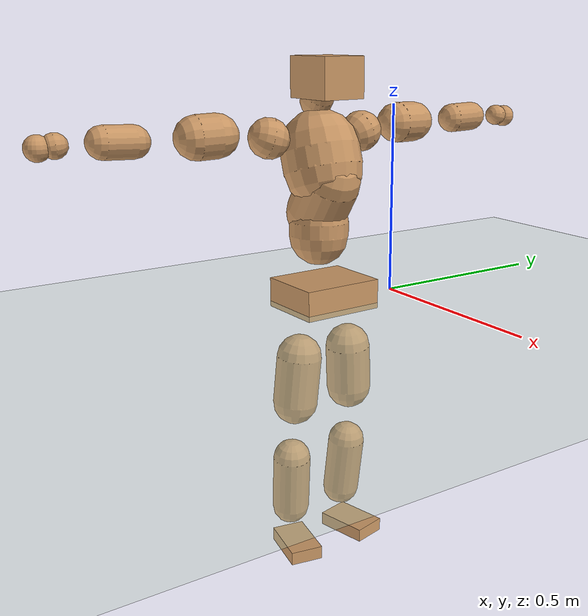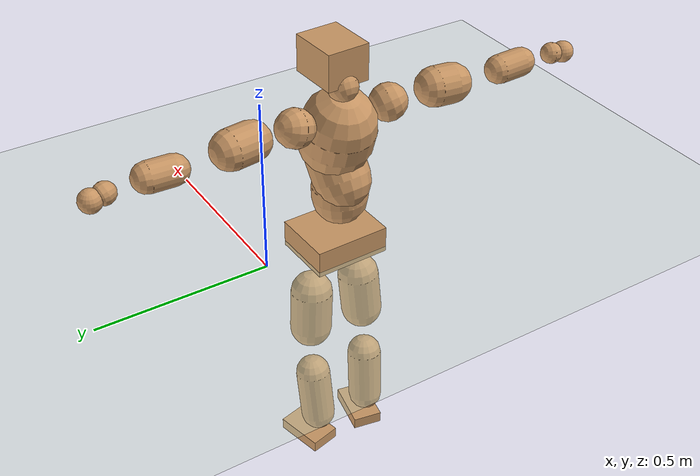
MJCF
<mujoco model="humanoid">
  <compiler coordinate="local" angle="radian"/>
  <default>
    <joint damping="0.0" armature="0.01" stiffness="0.0" limited="true"/>
    <geom conaffinity="1" condim="3" contype="7" margin="0.001" rgba="0.8 0.6 .4 1"/>
  </default>
  <asset>
    <texture type="skybox" builtin="gradient" rgb1=".4 .5 .6" rgb2="0 0 0" width="100" height="100"/>
    <texture builtin="flat" height="1278" mark="cross" markrgb="1 1 1" name="texgeom" random="0.01" rgb1="0.8 0.6 0.4" rgb2="0.8 0.6 0.4" type="cube" width="127"/>
    <texture builtin="checker" height="100" name="texplane" rgb1="0 0 0" rgb2="0.8 0.8 0.8" type="2d" width="100"/>
    <material name="MatPlane" reflectance="0.5" shininess="1" specular="1" texrepeat="60 60" texture="texplane"/>
    <material name="geom" texture="texgeom" texuniform="true"/>
  </asset>
  <worldbody>
    <light cutoff="100" diffuse="1 1 1" dir="-0 0 -1.3" directional="true" exponent="1" pos="0 0 1.3" specular=".1 .1 .1"/>
    <geom conaffinity="1" condim="3" name="floor" pos="0 0 0" rgba="0.8 0.9 0.8 1" size="100 100 .2" type="plane" material="MatPlane"/>
    <body name="Pelvis" pos="-0.0019 -0.2142 0.0348">
      <freejoint name="Pelvis"/>
      <geom type="box" contype="1" conaffinity="1" density="5359.375183" pos="-0.0047 -0.0001 -0.0121" size="0.0896 0.1096 0.039" quat="0.9999 0.0000 0.0000 0.0138" name="Pelvis"/>
      <body name="L_Hip" pos="-0.0022 0.0732 -0.0848">
        <joint name="L_Hip_x" type="hinge" pos="0 0 0" axis="1 0 0" stiffness="1600" damping="160" armature="0.02" range="-180.0000 180.0000"/>
        <joint name="L_Hip_y" type="hinge" pos="0 0 0" axis="0 1 0" stiffness="1600" damping="160" armature="0.02" range="-180.0000 180.0000"/>
        <joint name="L_Hip_z" type="hinge" pos="0 0 0" axis="0 0 1" stiffness="1600" damping="160" armature="0.02" range="-180.0000 180.0000"/>
        <geom type="capsule" contype="1" conaffinity="1" density="2040.816327" size="0.0601" fromto="-0.0040 0.0056 -0.0898 -0.0095 0.0133 -0.2121" name="L_Hip"/>
        <body name="L_Knee" pos="-0.0135 0.0189 -0.3019">
          <joint name="L_Knee_x" type="hinge" pos="0 0 0" axis="1 0 0" stiffness="1600" damping="160" armature="0.02" range="-180.0000 180.0000"/>
          <joint name="L_Knee_y" type="hinge" pos="0 0 0" axis="0 1 0" stiffness="1600" damping="160" armature="0.02" range="-180.0000 180.0000"/>
          <joint name="L_Knee_z" type="hinge" pos="0 0 0" axis="0 0 1" stiffness="1600" damping="160" armature="0.02" range="-180.0000 180.0000"/>
          <geom type="capsule" contype="1" conaffinity="1" density="1234.567901" size="0.0504" fromto="-0.0101 -0.0024 -0.0797 -0.0299 -0.0071 -0.2354" name="L_Knee"/>
          <body name="L_Ankle" pos="-0.04 -0.0095 -0.3151">
            <joint name="L_Ankle_x" type="hinge" pos="0 0 0" axis="1 0 0" stiffness="1600" damping="160" armature="0.02" range="-180.0000 180.0000"/>
            <joint name="L_Ankle_y" type="hinge" pos="0 0 0" axis="0 1 0" stiffness="1600" damping="160" armature="0.02" range="-180.0000 180.0000"/>
            <joint name="L_Ankle_z" type="hinge" pos="0 0 0" axis="0 0 1" stiffness="1600" damping="160" armature="0.02" range="-180.0000 180.0000"/>
            <geom type="box" contype="1" conaffinity="1" density="999.999991" pos="0.0502 0.0118 -0.0234" size="0.0727 0.0451 0.018" quat="0.9933 0.0000 0.0000 0.1152" name="L_Ankle"/>
            <body name="L_Toe" pos="0.1004 0.0236 -0.0467">
              <joint name="L_Toe_x" type="hinge" pos="0 0 0" axis="1 0 0" stiffness="1000" damping="100" armature="0.02" range="-180.0000 180.0000"/>
              <joint name="L_Toe_y" type="hinge" pos="0 0 0" axis="0 1 0" stiffness="1000" damping="100" armature="0.02" range="-180.0000 180.0000"/>
              <joint name="L_Toe_z" type="hinge" pos="0 0 0" axis="0 0 1" stiffness="1000" damping="100" armature="0.02" range="-180.0000 180.0000"/>
              <geom type="box" contype="1" conaffinity="1" density="7486095.180448" pos="0.0000 0.0000 0.0232" size="0.001 0.0023 0.0009" quat="0.9925 0.0000 0.0000 0.1222" name="L_Toe"/>
            </body>
          </body>
        </body>
      </body>
      <body name="R_Hip" pos="0.0001 -0.0718 -0.0854">
        <joint name="R_Hip_x" type="hinge" pos="0 0 0" axis="1 0 0" stiffness="1600" damping="160" armature="0.02" range="-180.0000 180.0000"/>
        <joint name="R_Hip_y" type="hinge" pos="0 0 0" axis="0 1 0" stiffness="1600" damping="160" armature="0.02" range="-180.0000 180.0000"/>
        <joint name="R_Hip_z" type="hinge" pos="0 0 0" axis="0 0 1" stiffness="1600" damping="160" armature="0.02" range="-180.0000 180.0000"/>
        <geom type="capsule" contype="1" conaffinity="1" density="2040.816327" size="0.0596" fromto="-0.0043 -0.0072 -0.0892 -0.0106 -0.0175 -0.2186" name="R_Hip"/>
        <body name="R_Knee" pos="-0.015 -0.0247 -0.3078">
          <joint name="R_Knee_x" type="hinge" pos="0 0 0" axis="1 0 0" stiffness="1600" damping="160" armature="0.02" range="-180.0000 180.0000"/>
          <joint name="R_Knee_y" type="hinge" pos="0 0 0" axis="0 1 0" stiffness="1600" damping="160" armature="0.02" range="-180.0000 180.0000"/>
          <joint name="R_Knee_z" type="hinge" pos="0 0 0" axis="0 0 1" stiffness="1600" damping="160" armature="0.02" range="-180.0000 180.0000"/>
          <geom type="capsule" contype="1" conaffinity="1" density="1234.567901" size="0.0505" fromto="-0.0096 0.0029 -0.0799 -0.0283 0.0085 -0.2361" name="R_Knee"/>
          <body name="R_Ankle" pos="-0.0379 0.0114 -0.316">
            <joint name="R_Ankle_x" type="hinge" pos="0 0 0" axis="1 0 0" stiffness="1600" damping="160" armature="0.02" range="-180.0000 180.0000"/>
            <joint name="R_Ankle_y" type="hinge" pos="0 0 0" axis="0 1 0" stiffness="1600" damping="160" armature="0.02" range="-180.0000 180.0000"/>
            <joint name="R_Ankle_z" type="hinge" pos="0 0 0" axis="0 0 1" stiffness="1600" damping="160" armature="0.02" range="-180.0000 180.0000"/>
            <geom type="box" contype="1" conaffinity="1" density="999.999933" pos="0.0522 -0.0096 -0.0204" size="0.0732 0.0441 0.0181" quat="0.9958 0.0000 0.0000 -0.0912" name="R_Ankle"/>
            <body name="R_Toe" pos="0.1044 -0.0193 -0.0407">
              <joint name="R_Toe_x" type="hinge" pos="0 0 0" axis="1 0 0" stiffness="1000" damping="100" armature="0.02" range="-180.0000 180.0000"/>
              <joint name="R_Toe_y" type="hinge" pos="0 0 0" axis="0 1 0" stiffness="1000" damping="100" armature="0.02" range="-180.0000 180.0000"/>
              <joint name="R_Toe_z" type="hinge" pos="0 0 0" axis="0 0 1" stiffness="1000" damping="100" armature="0.02" range="-180.0000 180.0000"/>
              <geom type="box" contype="1" conaffinity="1" density="7509581.700945" pos="0.0000 0.0000 0.0223" size="0.0009 0.0022 0.001" quat="0.9968 0.0000 0.0000 -0.0805" name="R_Toe"/>
            </body>
          </body>
        </body>
      </body>
      <body name="Torso" pos="-0.0264 -0.0022 0.0978">
        <joint name="Torso_x" type="hinge" pos="0 0 0" axis="1 0 0" stiffness="2000" damping="200" armature="0.02" range="-180.0000 180.0000"/>
        <joint name="Torso_y" type="hinge" pos="0 0 0" axis="0 1 0" stiffness="2000" damping="200" armature="0.02" range="-180.0000 180.0000"/>
        <joint name="Torso_z" type="hinge" pos="0 0 0" axis="0 0 1" stiffness="2000" damping="200" armature="0.02" range="-180.0000 180.0000"/>
        <geom type="capsule" contype="1" conaffinity="1" density="2040.816327" size="0.0775" fromto="-0.0009 0.0023 0.0775 -0.0005 0.0012 0.0407" name="Torso"/>
        <body name="Spine" pos="-0.0014 0.0036 0.1181">
          <joint name="Spine_x" type="hinge" pos="0 0 0" axis="1 0 0" stiffness="2000" damping="200" armature="0.02" range="-180.0000 180.0000"/>
          <joint name="Spine_y" type="hinge" pos="0 0 0" axis="0 1 0" stiffness="2000" damping="200" armature="0.02" range="-180.0000 180.0000"/>
          <joint name="Spine_z" type="hinge" pos="0 0 0" axis="0 0 1" stiffness="2000" damping="200" armature="0.02" range="-180.0000 180.0000"/>
          <geom type="capsule" contype="1" conaffinity="1" density="2040.816327" size="0.0787" fromto="0.0420 0.0041 0.0665 -0.0122 -0.0012 -0.0193" name="Spine"/>
          <body name="Chest" pos="0.0298 0.0029 0.0472">
            <joint name="Chest_x" type="hinge" pos="0 0 0" axis="1 0 0" stiffness="2000" damping="200" armature="0.02" range="-180.0000 180.0000"/>
            <joint name="Chest_y" type="hinge" pos="0 0 0" axis="0 1 0" stiffness="2000" damping="200" armature="0.02" range="-180.0000 180.0000"/>
            <joint name="Chest_z" type="hinge" pos="0 0 0" axis="0 0 1" stiffness="2000" damping="200" armature="0.02" range="-180.0000 180.0000"/>
            <geom type="capsule" contype="1" conaffinity="1" density="2040.816327" size="0.1019" fromto="-0.0311 -0.0002 0.0970 -0.0149 -0.0001 0.0466" name="Chest"/>
            <body name="Neck" pos="-0.0623 0.0001 0.1976">
              <joint name="Neck_x" type="hinge" pos="0 0 0" axis="1 0 0" stiffness="1000" damping="100" armature="0.02" range="-180.0000 180.0000"/>
              <joint name="Neck_y" type="hinge" pos="0 0 0" axis="0 1 0" stiffness="1000" damping="100" armature="0.02" range="-180.0000 180.0000"/>
              <joint name="Neck_z" type="hinge" pos="0 0 0" axis="0 0 1" stiffness="1000" damping="100" armature="0.02" range="-180.0000 180.0000"/>
              <geom type="capsule" contype="1" conaffinity="1" density="1000" size="0.0417" fromto="0.0261 -0.0001 0.0325 0.0147 -0.0000 0.0183" name="Neck"/>
              <body name="Head" pos="0.0408 -0.0001 0.0507">
                <joint name="Head_x" type="hinge" pos="0 0 0" axis="1 0 0" stiffness="1000" damping="100" armature="0.02" range="-180.0000 180.0000"/>
                <joint name="Head_y" type="hinge" pos="0 0 0" axis="0 1 0" stiffness="1000" damping="100" armature="0.02" range="-180.0000 180.0000"/>
                <joint name="Head_z" type="hinge" pos="0 0 0" axis="0 0 1" stiffness="1000" damping="100" armature="0.02" range="-180.0000 180.0000"/>
                <geom type="box" contype="1" conaffinity="1" density="2250.000237" pos="0.0214 0.0009 0.0264" size="0.0714 0.0599 0.0507" quat="0.9998 0.0000 0.0000 0.0221" name="Head"/>
              </body>
            </body>
            <body name="L_Thorax" pos="-0.0354 0.087 0.1185">
              <joint name="L_Thorax_x" type="hinge" pos="0 0 0" axis="1 0 0" stiffness="1000" damping="100" armature="0.02" range="-180.0000 180.0000"/>
              <joint name="L_Thorax_y" type="hinge" pos="0 0 0" axis="0 1 0" stiffness="1000" damping="100" armature="0.02" range="-180.0000 180.0000"/>
              <joint name="L_Thorax_z" type="hinge" pos="0 0 0" axis="0 0 1" stiffness="1000" damping="100" armature="0.02" range="-180.0000 180.0000"/>
              <geom type="capsule" contype="1" conaffinity="1" density="1000" size="0.0526" fromto="-0.0066 0.0499 0.0153 -0.0063 0.0476 0.0146" name="L_Thorax"/>
              <body name="L_Shoulder" pos="-0.0129 0.0974 0.0299">
                <joint name="L_Shoulder_x" type="hinge" pos="0 0 0" axis="1 0 0" stiffness="1000" damping="100" armature="0.02" range="-720.0000 720.0000"/>
                <joint name="L_Shoulder_y" type="hinge" pos="0 0 0" axis="0 1 0" stiffness="1000" damping="100" armature="0.02" range="-720.0000 720.0000"/>
                <joint name="L_Shoulder_z" type="hinge" pos="0 0 0" axis="0 0 1" stiffness="1000" damping="100" armature="0.02" range="-720.0000 720.0000"/>
                <geom type="capsule" contype="1" conaffinity="1" density="1000" size="0.0533" fromto="-0.0095 0.0827 -0.0012 -0.0165 0.1431 -0.0020" name="L_Shoulder"/>
                <body name="L_Elbow" pos="-0.0261 0.2258 -0.0031">
                  <joint name="L_Elbow_x" type="hinge" pos="0 0 0" axis="1 0 0" stiffness="1000" damping="100" armature="0.02" range="-720.0000 720.0000"/>
                  <joint name="L_Elbow_y" type="hinge" pos="0 0 0" axis="0 1 0" stiffness="1000" damping="100" armature="0.02" range="-720.0000 720.0000"/>
                  <joint name="L_Elbow_z" type="hinge" pos="0 0 0" axis="0 0 1" stiffness="1000" damping="100" armature="0.02" range="-720.0000 720.0000"/>
                  <geom type="capsule" contype="1" conaffinity="1" density="1000" size="0.0395" fromto="0.0004 0.0694 0.0020 0.0008 0.1374 0.0039" name="L_Elbow"/>
                  <body name="L_Wrist" pos="0.0012 0.2069 0.0059">
                    <joint name="L_Wrist_x" type="hinge" pos="0 0 0" axis="1 0 0" stiffness="600" damping="60" armature="0.02" range="-180.0000 180.0000"/>
                    <joint name="L_Wrist_y" type="hinge" pos="0 0 0" axis="0 1 0" stiffness="600" damping="60" armature="0.02" range="-180.0000 180.0000"/>
                    <joint name="L_Wrist_z" type="hinge" pos="0 0 0" axis="0 0 1" stiffness="600" damping="60" armature="0.02" range="-180.0000 180.0000"/>
                    <geom type="capsule" contype="1" conaffinity="1" density="1000" size="0.0287" fromto="-0.0057 0.0360 -0.0042 -0.0060 0.0380 -0.0045" name="L_Wrist"/>
                    <body name="L_Hand" pos="-0.0117 0.074 -0.0087">
                      <joint name="L_Hand_x" type="hinge" pos="0 0 0" axis="1 0 0" stiffness="600" damping="60" armature="0.02" range="-180.0000 180.0000"/>
                      <joint name="L_Hand_y" type="hinge" pos="0 0 0" axis="0 1 0" stiffness="600" damping="60" armature="0.02" range="-180.0000 180.0000"/>
                      <joint name="L_Hand_z" type="hinge" pos="0 0 0" axis="0 0 1" stiffness="600" damping="60" armature="0.02" range="-180.0000 180.0000"/>
                      <geom type="sphere" contype="1" conaffinity="1" density="1000" size="0.0300" pos="0.0000 0.0000 0.0000" name="L_Hand"/>
                    </body>
                  </body>
                </body>
              </body>
            </body>
            <body name="R_Thorax" pos="-0.0405 -0.0879 0.1148">
              <joint name="R_Thorax_x" type="hinge" pos="0 0 0" axis="1 0 0" stiffness="1000" damping="100" armature="0.02" range="-180.0000 180.0000"/>
              <joint name="R_Thorax_y" type="hinge" pos="0 0 0" axis="0 1 0" stiffness="1000" damping="100" armature="0.02" range="-180.0000 180.0000"/>
              <joint name="R_Thorax_z" type="hinge" pos="0 0 0" axis="0 0 1" stiffness="1000" damping="100" armature="0.02" range="-180.0000 180.0000"/>
              <geom type="capsule" contype="1" conaffinity="1" density="1000" size="0.0514" fromto="-0.0086 -0.0494 0.0154 -0.0090 -0.0513 0.0160" name="R_Thorax"/>
              <body name="R_Shoulder" pos="-0.0176 -0.1008 0.0314">
                <joint name="R_Shoulder_x" type="hinge" pos="0 0 0" axis="1 0 0" stiffness="1000" damping="100" armature="0.02" range="-720.0000 720.0000"/>
                <joint name="R_Shoulder_y" type="hinge" pos="0 0 0" axis="0 1 0" stiffness="1000" damping="100" armature="0.02" range="-720.0000 720.0000"/>
                <joint name="R_Shoulder_z" type="hinge" pos="0 0 0" axis="0 0 1" stiffness="1000" damping="100" armature="0.02" range="-720.0000 720.0000"/>
                <geom type="capsule" contype="1" conaffinity="1" density="1000" size="0.0545" fromto="-0.0067 -0.0842 -0.0029 -0.0108 -0.1368 -0.0047" name="R_Shoulder"/>
                <body name="R_Elbow" pos="-0.0175 -0.221 -0.0075">
                  <joint name="R_Elbow_x" type="hinge" pos="0 0 0" axis="1 0 0" stiffness="1000" damping="100" armature="0.02" range="-720.0000 720.0000"/>
                  <joint name="R_Elbow_y" type="hinge" pos="0 0 0" axis="0 1 0" stiffness="1000" damping="100" armature="0.02" range="-720.0000 720.0000"/>
                  <joint name="R_Elbow_z" type="hinge" pos="0 0 0" axis="0 0 1" stiffness="1000" damping="100" armature="0.02" range="-720.0000 720.0000"/>
                  <geom type="capsule" contype="1" conaffinity="1" density="1000" size="0.0397" fromto="-0.0001 -0.0696 0.0028 -0.0001 -0.1427 0.0057" name="R_Elbow"/>
                  <body name="R_Wrist" pos="-0.0002 -0.2123 0.0085">
                    <joint name="R_Wrist_x" type="hinge" pos="0 0 0" axis="1 0 0" stiffness="600" damping="60" armature="0.02" range="-180.0000 180.0000"/>
                    <joint name="R_Wrist_y" type="hinge" pos="0 0 0" axis="0 1 0" stiffness="600" damping="60" armature="0.02" range="-180.0000 180.0000"/>
                    <joint name="R_Wrist_z" type="hinge" pos="0 0 0" axis="0 0 1" stiffness="600" damping="60" armature="0.02" range="-180.0000 180.0000"/>
                    <geom type="capsule" contype="1" conaffinity="1" density="1000" size="0.0293" fromto="-0.0046 -0.0361 -0.0032 -0.0049 -0.0381 -0.0034" name="R_Wrist"/>
                    <body name="R_Hand" pos="-0.0095 -0.0742 -0.0067">
                      <joint name="R_Hand_x" type="hinge" pos="0 0 0" axis="1 0 0" stiffness="600" damping="60" armature="0.02" range="-180.0000 180.0000"/>
                      <joint name="R_Hand_y" type="hinge" pos="0 0 0" axis="0 1 0" stiffness="600" damping="60" armature="0.02" range="-180.0000 180.0000"/>
                      <joint name="R_Hand_z" type="hinge" pos="0 0 0" axis="0 0 1" stiffness="600" damping="60" armature="0.02" range="-180.0000 180.0000"/>
                      <geom type="sphere" contype="1" conaffinity="1" density="1000" size="0.0301" pos="0.0000 0.0000 0.0000" name="R_Hand"/>
                    </body>
                  </body>
                </body>
              </body>
            </body>
          </body>
        </body>
      </body>
    </body>
  </worldbody>
  <actuator>
    <motor name="L_Hip_x" joint="L_Hip_x" gear="500"/>
    <motor name="L_Hip_y" joint="L_Hip_y" gear="500"/>
    <motor name="L_Hip_z" joint="L_Hip_z" gear="500"/>
    <motor name="L_Knee_x" joint="L_Knee_x" gear="500"/>
    <motor name="L_Knee_y" joint="L_Knee_y" gear="500"/>
    <motor name="L_Knee_z" joint="L_Knee_z" gear="500"/>
    <motor name="L_Ankle_x" joint="L_Ankle_x" gear="500"/>
    <motor name="L_Ankle_y" joint="L_Ankle_y" gear="500"/>
    <motor name="L_Ankle_z" joint="L_Ankle_z" gear="500"/>
    <motor name="L_Toe_x" joint="L_Toe_x" gear="500"/>
    <motor name="L_Toe_y" joint="L_Toe_y" gear="500"/>
    <motor name="L_Toe_z" joint="L_Toe_z" gear="500"/>
    <motor name="R_Hip_x" joint="R_Hip_x" gear="500"/>
    <motor name="R_Hip_y" joint="R_Hip_y" gear="500"/>
    <motor name="R_Hip_z" joint="R_Hip_z" gear="500"/>
    <motor name="R_Knee_x" joint="R_Knee_x" gear="500"/>
    <motor name="R_Knee_y" joint="R_Knee_y" gear="500"/>
    <motor name="R_Knee_z" joint="R_Knee_z" gear="500"/>
    <motor name="R_Ankle_x" joint="R_Ankle_x" gear="500"/>
    <motor name="R_Ankle_y" joint="R_Ankle_y" gear="500"/>
    <motor name="R_Ankle_z" joint="R_Ankle_z" gear="500"/>
    <motor name="R_Toe_x" joint="R_Toe_x" gear="500"/>
    <motor name="R_Toe_y" joint="R_Toe_y" gear="500"/>
    <motor name="R_Toe_z" joint="R_Toe_z" gear="500"/>
    <motor name="Torso_x" joint="Torso_x" gear="500"/>
    <motor name="Torso_y" joint="Torso_y" gear="500"/>
    <motor name="Torso_z" joint="Torso_z" gear="500"/>
    <motor name="Spine_x" joint="Spine_x" gear="500"/>
    <motor name="Spine_y" joint="Spine_y" gear="500"/>
    <motor name="Spine_z" joint="Spine_z" gear="500"/>
    <motor name="Chest_x" joint="Chest_x" gear="500"/>
    <motor name="Chest_y" joint="Chest_y" gear="500"/>
    <motor name="Chest_z" joint="Chest_z" gear="500"/>
    <motor name="Neck_x" joint="Neck_x" gear="500"/>
    <motor name="Neck_y" joint="Neck_y" gear="500"/>
    <motor name="Neck_z" joint="Neck_z" gear="500"/>
    <motor name="Head_x" joint="Head_x" gear="500"/>
    <motor name="Head_y" joint="Head_y" gear="500"/>
    <motor name="Head_z" joint="Head_z" gear="500"/>
    <motor name="L_Thorax_x" joint="L_Thorax_x" gear="500"/>
    <motor name="L_Thorax_y" joint="L_Thorax_y" gear="500"/>
    <motor name="L_Thorax_z" joint="L_Thorax_z" gear="500"/>
    <motor name="L_Shoulder_x" joint="L_Shoulder_x" gear="500"/>
    <motor name="L_Shoulder_y" joint="L_Shoulder_y" gear="500"/>
    <motor name="L_Shoulder_z" joint="L_Shoulder_z" gear="500"/>
    <motor name="L_Elbow_x" joint="L_Elbow_x" gear="500"/>
    <motor name="L_Elbow_y" joint="L_Elbow_y" gear="500"/>
    <motor name="L_Elbow_z" joint="L_Elbow_z" gear="500"/>
    <motor name="L_Wrist_x" joint="L_Wrist_x" gear="500"/>
    <motor name="L_Wrist_y" joint="L_Wrist_y" gear="500"/>
    <motor name="L_Wrist_z" joint="L_Wrist_z" gear="500"/>
    <motor name="L_Hand_x" joint="L_Hand_x" gear="500"/>
    <motor name="L_Hand_y" joint="L_Hand_y" gear="500"/>
    <motor name="L_Hand_z" joint="L_Hand_z" gear="500"/>
    <motor name="R_Thorax_x" joint="R_Thorax_x" gear="500"/>
    <motor name="R_Thorax_y" joint="R_Thorax_y" gear="500"/>
    <motor name="R_Thorax_z" joint="R_Thorax_z" gear="500"/>
    <motor name="R_Shoulder_x" joint="R_Shoulder_x" gear="500"/>
    <motor name="R_Shoulder_y" joint="R_Shoulder_y" gear="500"/>
    <motor name="R_Shoulder_z" joint="R_Shoulder_z" gear="500"/>
    <motor name="R_Elbow_x" joint="R_Elbow_x" gear="500"/>
    <motor name="R_Elbow_y" joint="R_Elbow_y" gear="500"/>
    <motor name="R_Elbow_z" joint="R_Elbow_z" gear="500"/>
    <motor name="R_Wrist_x" joint="R_Wrist_x" gear="500"/>
    <motor name="R_Wrist_y" joint="R_Wrist_y" gear="500"/>
    <motor name="R_Wrist_z" joint="R_Wrist_z" gear="500"/>
    <motor name="R_Hand_x" joint="R_Hand_x" gear="500"/>
    <motor name="R_Hand_y" joint="R_Hand_y" gear="500"/>
    <motor name="R_Hand_z" joint="R_Hand_z" gear="500"/>
  </actuator>
  <contact>
    <exclude body1="Torso" body2="Chest"/>
    <exclude body1="Head" body2="Chest"/>
    <exclude body1="R_Knee" body2="R_Toe"/>
    <exclude body1="R_Knee" body2="L_Ankle"/>
    <exclude body1="R_Knee" body2="L_Toe"/>
    <exclude body1="L_Knee" body2="L_Toe"/>
    <exclude body1="L_Knee" body2="R_Ankle"/>
    <exclude body1="L_Knee" body2="R_Toe"/>
    <exclude body1="L_Shoulder" body2="Chest"/>
    <exclude body1="R_Shoulder" body2="Chest"/>
  </contact>
  <sensor/>
  <size njmax="700" nconmax="700"/>
</mujoco>
